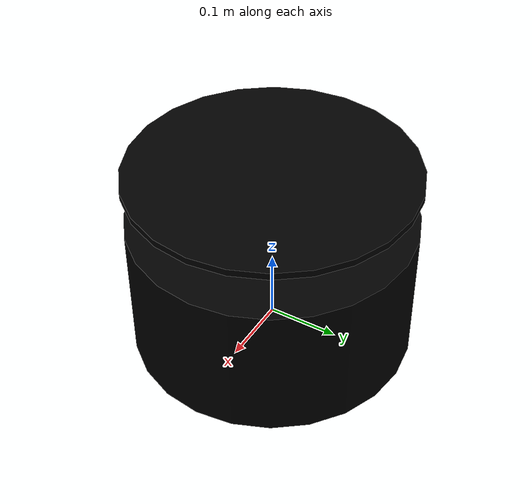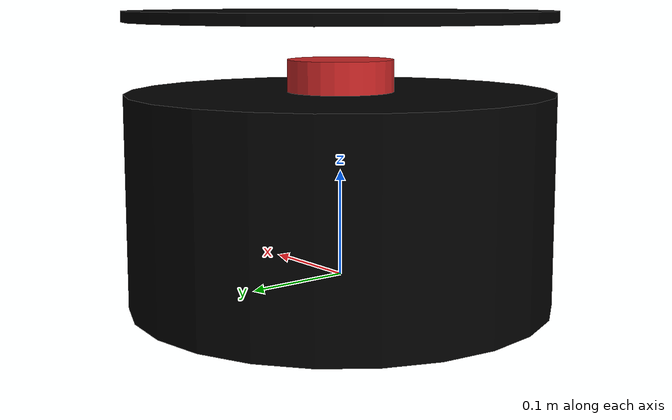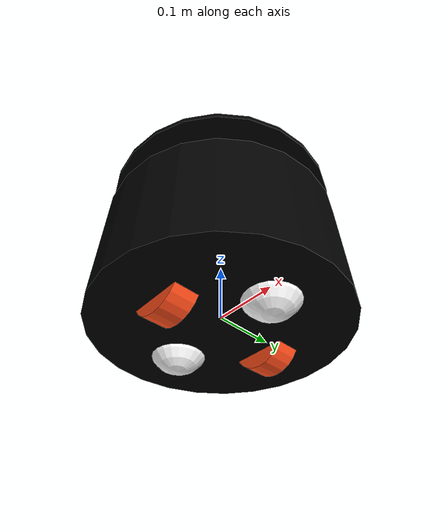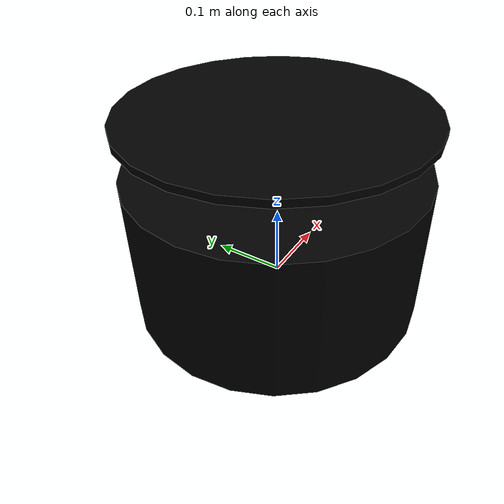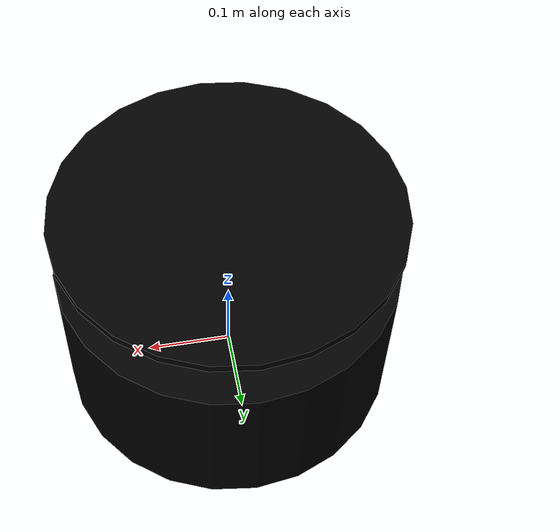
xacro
<?xml version="1.0"?>
<robot xmlns:xacro="http://www.ros.org/wiki/xacro"  name="robot">

    <xacro:include filename="inertial_macros.xacro" />
    <xacro:include filename="black_donut.xacro" />

    <xacro:include filename="ros2_control.xacro" />

    <xacro:include filename="depth_camera_front.xacro" />

    <xacro:include filename="gps.xacro" />
    <xacro:include filename="imu.xacro" />

</robot>

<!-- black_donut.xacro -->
<robot xmlns:xacro="http://www.ros.org/wiki/xacro" name="black_donut">

    <xacro:include filename="inertial_macros.xacro"/>

    <material name="white">
        <color rgba="1 1 1 1" />
    </material>

    <material name="orange">
        <color rgba="1 0.3 0.1 1"/>
    </material>

    <material name="blue">
        <color rgba="0.2 0.2 1 1"/>
    </material>

    <material name="black">
        <color rgba="0 0 0 1"/>
    </material>

    <!-- BASE_FOOTPRINT LINK -->

    <link name="base_footprint">

    </link>

    <!-- BASE LINK -->

    <joint name="base_link_joint" type="fixed">
        <parent link="base_footprint"/>
        <child link="base_link"/>
        <origin xyz="0 0 0"/>
    </joint>

    <link name="base_link">
        <visual>
            <origin xyz="0 0 0.075"/>
            <geometry>
                <cylinder radius="0.2" length="0.2"/>
            </geometry>1
            <material name="black"/>
        </visual>
        <collision>
            <origin xyz="0 0 0.075"/>
            <geometry>
                <box size="0.3 0.3 0.15"/>
            </geometry>
        </collision>
        <xacro:inertial_box mass="0.5" x="0.3" y="0.3" z="0.15">
            <origin xyz="0 0 0.075" rpy="0 0 0"/>
        </xacro:inertial_box>
    </link>

    <!-- TOP PLATE-->
    <joint name="hat_joint" type="fixed">
        <parent link="base_link"/>
        <child link="hat_link"/>
        <origin xyz="0 0 0"/>
    </joint>

    <link name="hat_link">
        <visual>
            <origin xyz="0 0 0.245"/>
            <geometry>
                <cylinder radius="0.2" length="0.01"/>
            </geometry>1
            <material name="black"/>
        </visual>
        <collision>
            <origin xyz="0 0 0.245"/>
            <geometry>
                <box size="0.3 0.3 0.15"/>
            </geometry>
        </collision>
        <xacro:inertial_box mass="0.1" x="0.1" y="0.1" z="0.1">
            <origin xyz="0 0 0.245" rpy="0 0 0"/>
        </xacro:inertial_box>
    </link>

    <!-- LEFT WHEEL LINK -->

    <joint name="left_wheel_joint" type="continuous">
        <parent link="base_link"/>
        <child link="left_wheel"/>
        <origin xyz="0 0.1 0" rpy="-${pi/2} 0 0" />
        <axis xyz="0 0 1"/>
    </joint>

    <link name="left_wheel">
        <visual>
            <geometry>
                <cylinder radius="0.05" length="0.04"/>
            </geometry>
            <material name="orange"/>
        </visual>
        <collision>
            <geometry>
                <cylinder radius="0.05" length="0.04"/>
            </geometry>
        </collision>
        <xacro:inertial_cylinder mass="0.1" length="0.04" radius="0.05">
            <origin xyz="0 0 0" rpy="0 0 0"/>
        </xacro:inertial_cylinder>
    </link>

    <!-- RIGHT WHEEL LINK -->

    <joint name="right_wheel_joint" type="continuous">
        <parent link="base_link"/>
        <child link="right_wheel"/>
        <origin xyz="0 -0.1 0" rpy="${pi/2} 0 0" />
        <axis xyz="0 0 -1"/>
    </joint>

    <link name="right_wheel">
        <visual>
            <geometry>
                <cylinder radius="0.05" length="0.04"/>
            </geometry>
            <material name="orange"/>
        </visual>
        <collision>
            <geometry>
                <cylinder radius="0.05" length="0.04"/>
            </geometry>
        </collision>
        <xacro:inertial_cylinder mass="0.1" length="0.04" radius="0.05">
            <origin xyz="0 0 0" rpy="0 0 0"/>
        </xacro:inertial_cylinder>
    </link>

    <!-- CASTER WHEEL LINK -->

    <joint name="caster_wheel_f_joint" type="fixed">
        <parent link="base_link"/>
        <child link="caster_wheel_f"/>
        <origin xyz="0.1 0 0"/>
    </joint>

    <link name="caster_wheel_f">
        <visual>
            <geometry>
                <sphere radius="0.05"/>
            </geometry>
            <material name="white"/>
        </visual>
        <collision>
            <geometry>
                <sphere radius="0.05"/>
            </geometry>
        </collision>
        <xacro:inertial_sphere mass="0.1" radius="0.05">
            <origin xyz="0 0 0" rpy="0 0 0"/>
        </xacro:inertial_sphere>
    </link>

    <joint name="caster_wheel_joint_b" type="fixed">
        <parent link="base_link"/>
        <child link="caster_wheel_b"/>
        <origin xyz="-0.1 0 0"/>
    </joint>

    <link name="caster_wheel_b">
        <visual>
            <geometry>
                <sphere radius="0.05"/>
            </geometry>
            <material name="white"/>
        </visual>
        <collision>
            <geometry>
                <sphere radius="0.05"/>
            </geometry>
        </collision>
        <xacro:inertial_sphere mass="0.1" radius="0.05">
            <origin xyz="0 0 0" rpy="0 0 0"/>
        </xacro:inertial_sphere>
    </link>

    <gazebo reference="base_link">
        <material>Gazebo/Black</material>
    </gazebo>

    <gazebo reference="right_wheel">
        <material>Gazebo/Orange</material>
    </gazebo>
    <gazebo reference="left_wheel">
        <material>Gazebo/Orange</material>
    </gazebo>
    <gazebo reference="hat_link">
        <material>Gazebo/Black</material>
        <mu1 value="0.001"/>
        <mu2 value="0.001"/>
    </gazebo>

    <gazebo reference="caster_wheel_f">
        <material>Gazebo/Black</material>
        <mu1 value="0.001"/>
        <mu2 value="0.001"/>
    </gazebo>
    <gazebo reference="caster_wheel_b">
        <material>Gazebo/Black</material>
        <mu1 value="0.001"/>
        <mu2 value="0.001"/>
    </gazebo>

</robot>

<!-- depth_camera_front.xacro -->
<robot xmlns:xacro="http://www.ros.org/wiki/xacro">

  <!-- ========== FRONT CAMERA ========== -->
  <joint name="camera_joint_front" type="fixed">
    <parent link="base_link"/>
    <child link="camera_frame_front"/>
    <origin xyz="0.3 0 0.5" rpy="0 0 0"/>  <!-- Adjust position as needed -->
  </joint>

  <link name="camera_frame_front"/>

  <joint name="camera_optical_front_joint" type="fixed">
    <parent link="camera_frame_front"/>
    <child link="camera_optical_front_link"/>
    <origin xyz="0 0 0" rpy="-1.5707 0 -1.5707"/>  <!-- Rotate to optical frame -->
  </joint>

  <link name="camera_optical_front_link"/>

  <gazebo reference="camera_frame_front">
    <sensor name="camera_front" type="depth">
      <pose>0 0 0 0 0 0</pose>
      <visualize>true</visualize>
      <update_rate>10</update_rate>
      <camera>
        <horizontal_fov>1.089</horizontal_fov>
        <image>
          <width>640</width>
          <height>480</height>
          <format>R8G8B8</format>
        </image>
        <clip>
          <near>0.2</near>
          <far>8.0</far>
        </clip>
      </camera>
      <plugin name="camera_front_plugin" filename="libgazebo_ros_camera.so">
        <ros>
          <namespace>camera_front</namespace>
        </ros>
        <frame_name>camera_optical_front_link</frame_name>
        <camera_name>camera_front</camera_name>
        <image_topic_name>image_raw</image_topic_name>
        <depth_image_topic_name>depth/image_raw</depth_image_topic_name>
        <point_cloud_topic_name>points</point_cloud_topic_name>
      </plugin>
    </sensor>
  </gazebo>

  <!-- ========== LEFT CAMERA ========== -->
  <joint name="camera_joint_left" type="fixed">
    <parent link="base_link"/>
    <child link="camera_frame_left"/>
    <origin xyz="0.2 -0.3 0.5" rpy="0 0 1.5707"/>  <!-- Left side, 90° yaw -->
  </joint>

  <link name="camera_frame_left"/>

  <joint name="camera_optical_left_joint" type="fixed">
    <parent link="camera_frame_left"/>
    <child link="camera_optical_left_link"/>
    <origin xyz="0 0 0" rpy="-1.5707 0 -1.5707"/>
  </joint>

  <link name="camera_optical_left_link"/>

  <gazebo reference="camera_frame_left">
    <sensor name="camera_left" type="depth">
      <pose>0 0 0 0 0 0</pose>
      <visualize>true</visualize>
      <update_rate>10</update_rate>
      <camera>
        <horizontal_fov>1.089</horizontal_fov>
        <image>
          <width>640</width>
          <height>480</height>
          <format>R8G8B8</format>
        </image>
        <clip>
          <near>0.2</near>
          <far>8.0</far>
        </clip>
      </camera>
      <plugin name="camera_left_plugin" filename="libgazebo_ros_camera.so">
        <ros>
          <namespace>camera_left</namespace>
        </ros>
        <frame_name>camera_optical_left_link</frame_name>
        <camera_name>camera_left</camera_name>
        <image_topic_name>image_raw</image_topic_name>
        <depth_image_topic_name>depth/image_raw</depth_image_topic_name>
        <point_cloud_topic_name>points</point_cloud_topic_name>
      </plugin>
    </sensor>
  </gazebo>

  <!-- ========== RIGHT CAMERA ========== -->
  <joint name="camera_joint_right" type="fixed">
    <parent link="base_link"/>
    <child link="camera_frame_right"/>
    <origin xyz="0.2 0.3 0.5" rpy="0 0 -1.5707"/>  <!-- Right side, -90° yaw -->
  </joint>

  <link name="camera_frame_right"/>

  <joint name="camera_optical_right_joint" type="fixed">
    <parent link="camera_frame_right"/>
    <child link="camera_optical_right_link"/>
    <origin xyz="0 0 0" rpy="-1.5707 0 -1.5707"/>
  </joint>

  <link name="camera_optical_right_link"/>

  <gazebo reference="camera_frame_right">
    <sensor name="camera_right" type="depth">
      <pose>0 0 0 0 0 0</pose>
      <visualize>true</visualize>
      <update_rate>10</update_rate>
      <camera>
        <horizontal_fov>1.089</horizontal_fov>
        <image>
          <width>640</width>
          <height>480</height>
          <format>R8G8B8</format>
        </image>
        <clip>
          <near>0.2</near>
          <far>8.0</far>
        </clip>
      </camera>
      <plugin name="camera_right_plugin" filename="libgazebo_ros_camera.so">
        <ros>
          <namespace>camera_right</namespace>
        </ros>
        <frame_name>camera_optical_right_link</frame_name>
        <camera_name>camera_right</camera_name>
        <image_topic_name>image_raw</image_topic_name>
        <depth_image_topic_name>depth/image_raw</depth_image_topic_name>
        <point_cloud_topic_name>points</point_cloud_topic_name>
      </plugin>
    </sensor>
  </gazebo>

</robot>

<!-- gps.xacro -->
<robot xmlns:xacro="http://www.ros.org/wiki/xacro" >

    <joint name="gps_joint" type="fixed">
        <parent link="hat_link"/>
        <child link="gps_frame"/>
        <origin xyz="0 0 0.175" rpy="0 0 0"/>
    </joint>

    <link name="gps_frame">
        <visual>
            <geometry>
                <cylinder radius="0.05" length="0.06"/>
            </geometry>
            <material name="red"/>
        </visual>
        <collision>
            <geometry>
                <cylinder radius="0.05" length="0.06"/>
            </geometry>
        </collision>
        <xacro:inertial_cylinder mass="0.1" length="0.06" radius="0.05">
            <origin xyz="0.2 0 0" rpy="0 0 0"/>
        </xacro:inertial_cylinder>
    </link>

    <gazebo reference="gps_frame">
        <material>Gazebo/Orange</material>

        <sensor name="gps" type="gps">
          <always_on>true</always_on>
          <update_rate>1</update_rate>
          <pose>0 0 0 0 0 0</pose>
          <gps>
            <position_sensing>
              <horizontal>
                <noise type="gaussian">
                  <mean>0.0</mean>
                  <stddev>0.01</stddev>
                </noise>
              </horizontal>
              <vertical>
                <noise type="gaussian">
                  <mean>0.0</mean>
                  <stddev>0.01</stddev>
                </noise>
              </vertical>
            </position_sensing>
          </gps>
          <plugin name="gps_plugin" filename="libgazebo_ros_gps_sensor.so">
            <ros>
              <remapping>~/out:=/gps/fix</remapping>
            </ros>
          </plugin>
        </sensor>

    </gazebo>

</robot>

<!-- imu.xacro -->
<robot xmlns:xacro="http://www.ros.org/wiki/xacro" >

    <joint name="imu_joint" type="fixed">
        <parent link="base_link"/>
        <child link="imu_link"/>
        <origin xyz="0 0 0.175" rpy="0 0 0"/>
    </joint>

    <link name="imu_link">
        <visual>
            <geometry>
                <box size="0.02 0.02 0.01"/>
            </geometry>
            <material name="red"/>
        </visual>
        <collision>
            <geometry>
                <box size="0.02 0.02 0.01"/>
            </geometry>
        </collision>
    </link>

 <gazebo reference="imu_link">
    <gravity>true</gravity>
    <sensor name="imu_sensor" type="imu">
      <always_on>true</always_on>
      <update_rate>100</update_rate>
      <visualize>true</visualize>
      <topic>__default_topic__</topic>
      <plugin filename="libgazebo_ros_imu_sensor.so" name="imu_plugin">
        <topicName>imu</topicName>
        <bodyName>imu_link</bodyName>
        <updateRateHZ>10.0</updateRateHZ>
        <gaussianNoise>0.0</gaussianNoise>
        <xyzOffset>0 0 0</xyzOffset>
        <rpyOffset>0 0 0</rpyOffset>
        <frameName>imu_link</frameName>
        <initialOrientationAsReference>false</initialOrientationAsReference>
      </plugin>
      <pose>0 0 0 0 0 0</pose>
    </sensor>
  </gazebo>

</robot>
